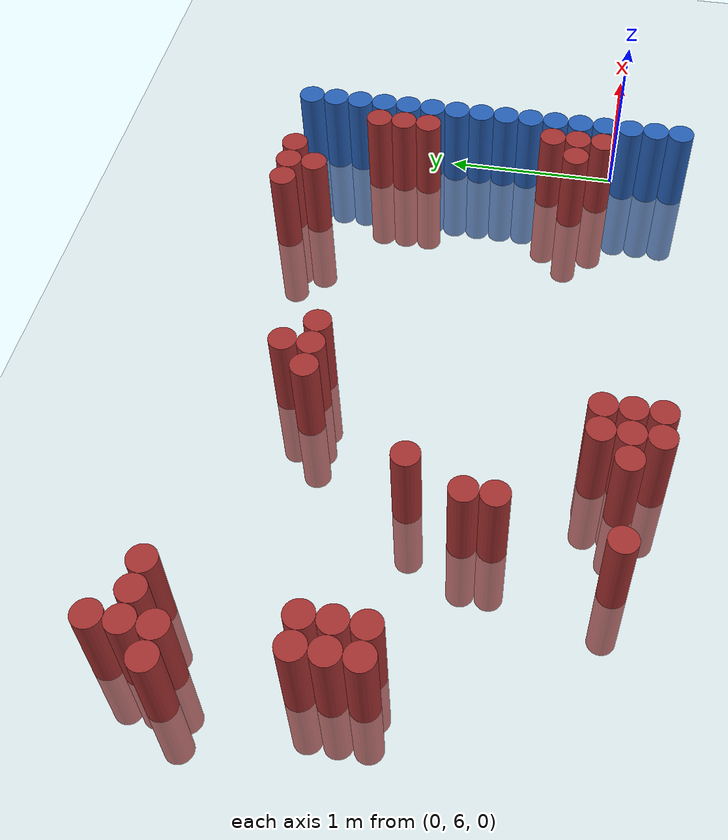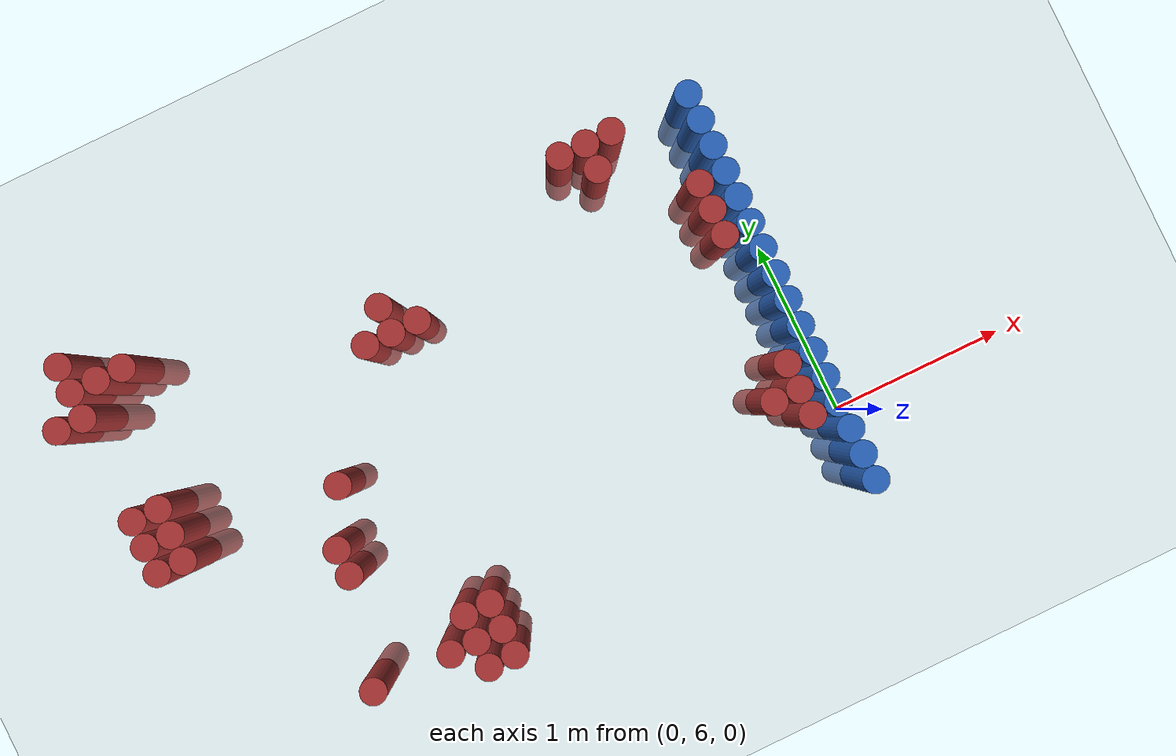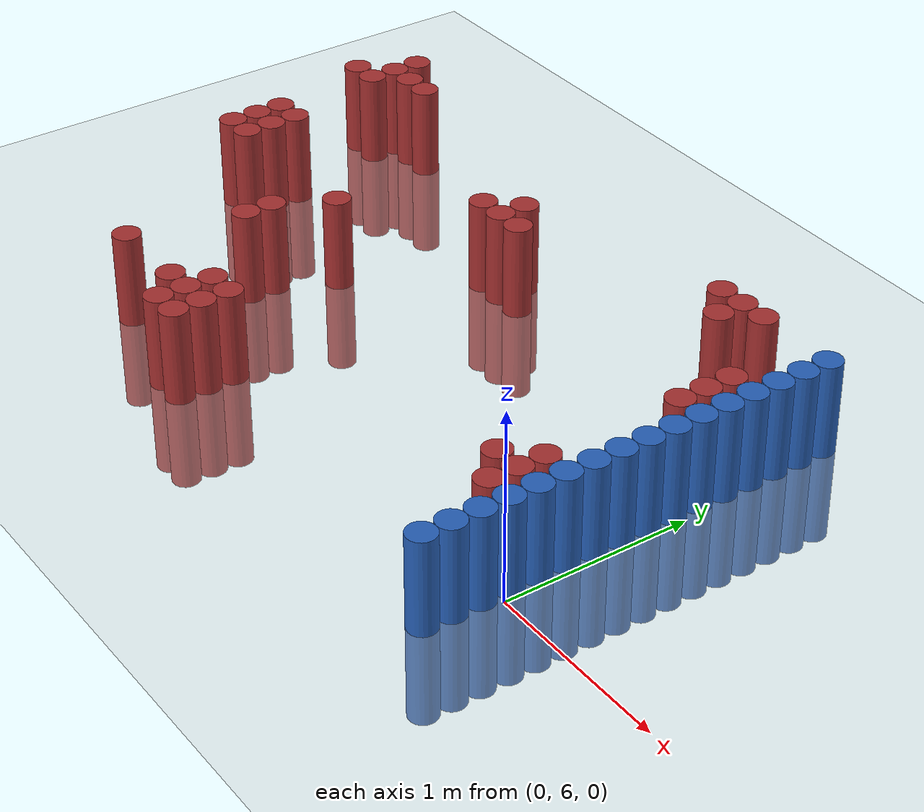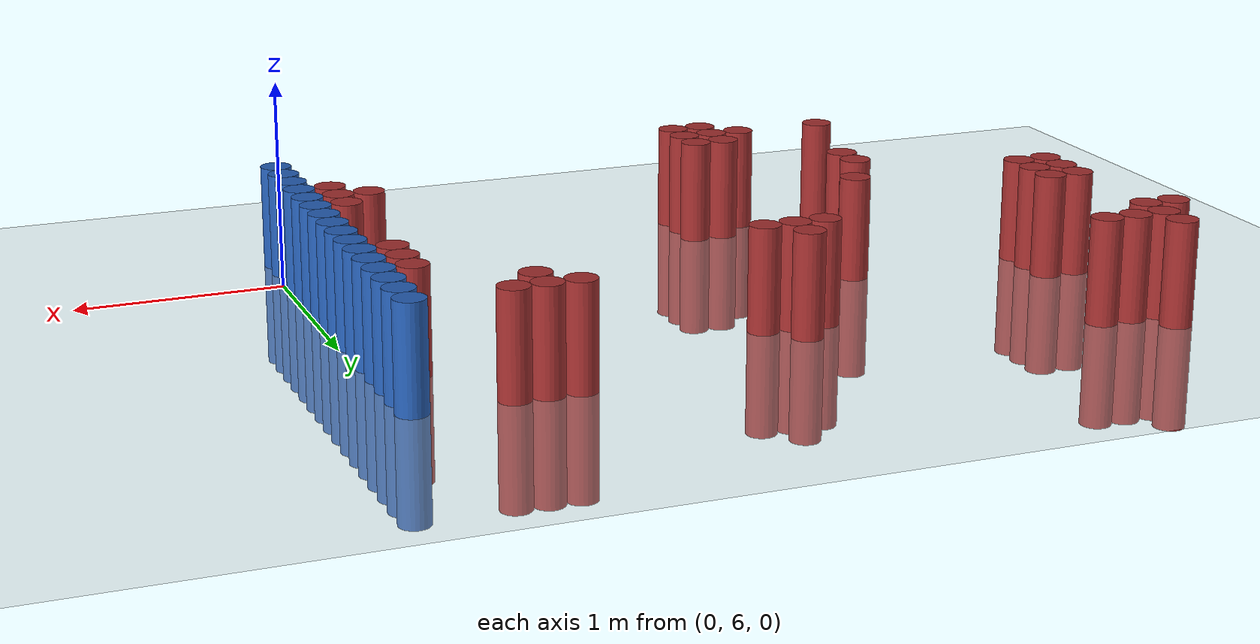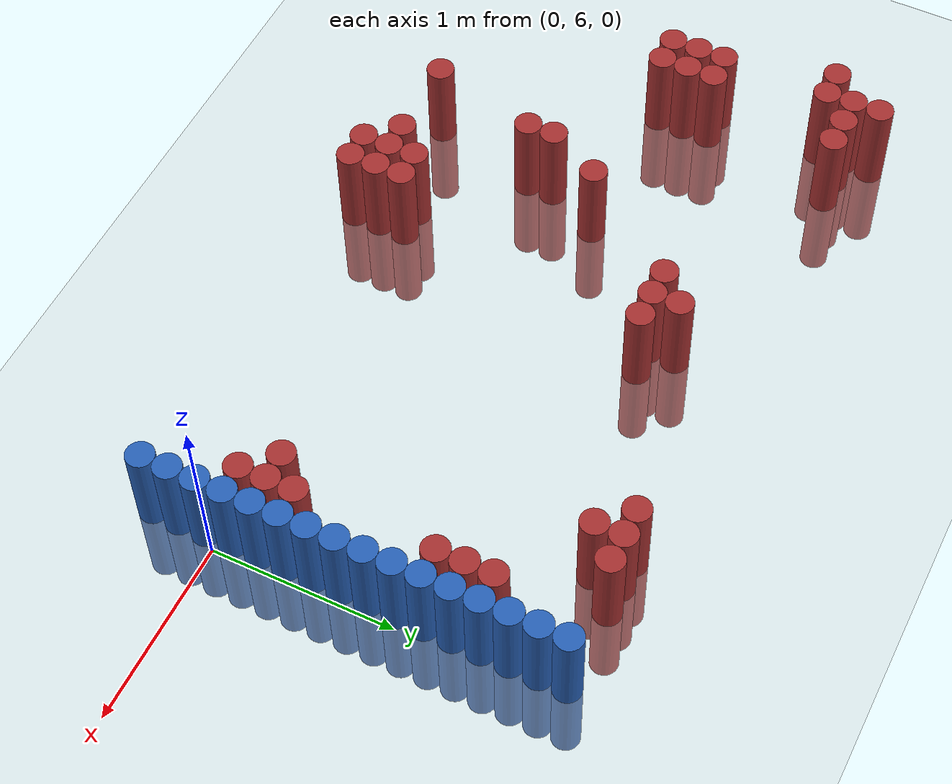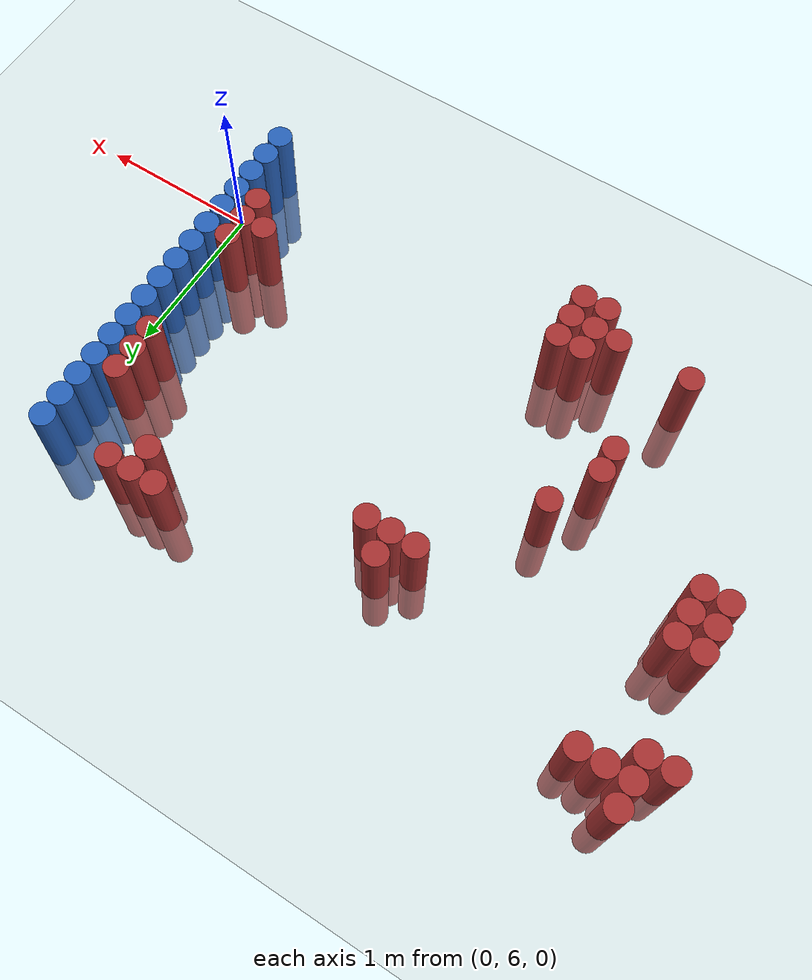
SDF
<sdf version="1.6">
 <world name="default">
  <model name="ground_plane">
   <static>1</static>
   <link name="link">
    <collision name="collision">
     <geometry><plane><normal>0 0 1</normal><size>100 100</size></plane></geometry>
     <surface><friction><ode><mu>100</mu><mu2>50</mu2></ode></friction></surface>
    </collision>
    <visual name="visual">
     <cast_shadows>0</cast_shadows>
     <geometry><plane><normal>0 0 1</normal><size>100 100</size></plane></geometry>
     <material>
      <script><uri>file://media/materials/scripts/gazebo.material</uri><name>Gazebo/Grey</name></script>
     </material>
    </visual>
   </link>
  </model>
  <model name="unit_cylinder_155">
   <static>1</static>
   <pose>-3.825000 7.725000 0.000000 0.000000 0.000000 0.000000</pose>
   <link name="link">
    <inertial>
     <mass>1</mass>
     <inertia><ixx>0.145833</ixx><ixy>0</ixy><ixz>0</ixz><iyy>0.145833</iyy><iyz>0</iyz><izz>0.125</izz></inertia>
    </inertial>
    <collision name="collision">
     <geometry><cylinder><radius>0.075000</radius><length>1</length></cylinder></geometry>
    </collision>
    <visual name="visual">
     <geometry><cylinder><radius>0.075000</radius><length>1</length></cylinder></geometry>
     <material>
      <ambient>0.648000 0.192000 0.192000 1</ambient>
      <diffuse>0.648000 0.192000 0.192000 1</diffuse>
     </material>
     <material>
      <script><name>Gazebo/Grey</name><uri>file://media/materials/scripts/gazebo.material</uri></script>
     </material>
    </visual>
   </link>
  </model>
  <model name="unit_cylinder_158">
   <static>1</static>
   <pose>-3.675000 6.825000 0.000000 0.000000 0.000000 0.000000</pose>
   <link name="link">
    <inertial>
     <mass>1</mass>
     <inertia><ixx>0.145833</ixx><ixy>0</ixy><ixz>0</ixz><iyy>0.145833</iyy><iyz>0</iyz><izz>0.125</izz></inertia>
    </inertial>
    <collision name="collision">
     <geometry><cylinder><radius>0.075000</radius><length>1</length></cylinder></geometry>
    </collision>
    <visual name="visual">
     <geometry><cylinder><radius>0.075000</radius><length>1</length></cylinder></geometry>
     <material>
      <ambient>0.648000 0.192000 0.192000 1</ambient>
      <diffuse>0.648000 0.192000 0.192000 1</diffuse>
     </material>
     <material>
      <script><name>Gazebo/Grey</name><uri>file://media/materials/scripts/gazebo.material</uri></script>
     </material>
    </visual>
   </link>
  </model>
  <model name="unit_cylinder_159">
   <static>1</static>
   <pose>-3.675000 6.975000 0.000000 0.000000 0.000000 0.000000</pose>
   <link name="link">
    <inertial>
     <mass>1</mass>
     <inertia><ixx>0.145833</ixx><ixy>0</ixy><ixz>0</ixz><iyy>0.145833</iyy><iyz>0</iyz><izz>0.125</izz></inertia>
    </inertial>
    <collision name="collision">
     <geometry><cylinder><radius>0.075000</radius><length>1</length></cylinder></geometry>
    </collision>
    <visual name="visual">
     <geometry><cylinder><radius>0.075000</radius><length>1</length></cylinder></geometry>
     <material>
      <ambient>0.648000 0.192000 0.192000 1</ambient>
      <diffuse>0.648000 0.192000 0.192000 1</diffuse>
     </material>
     <material>
      <script><name>Gazebo/Grey</name><uri>file://media/materials/scripts/gazebo.material</uri></script>
     </material>
    </visual>
   </link>
  </model>
  <model name="unit_cylinder_160">
   <static>1</static>
   <pose>-3.675000 7.125000 0.000000 0.000000 0.000000 0.000000</pose>
   <link name="link">
    <inertial>
     <mass>1</mass>
     <inertia><ixx>0.145833</ixx><ixy>0</ixy><ixz>0</ixz><iyy>0.145833</iyy><iyz>0</iyz><izz>0.125</izz></inertia>
    </inertial>
    <collision name="collision">
     <geometry><cylinder><radius>0.075000</radius><length>1</length></cylinder></geometry>
    </collision>
    <visual name="visual">
     <geometry><cylinder><radius>0.075000</radius><length>1</length></cylinder></geometry>
     <material>
      <ambient>0.648000 0.192000 0.192000 1</ambient>
      <diffuse>0.648000 0.192000 0.192000 1</diffuse>
     </material>
     <material>
      <script><name>Gazebo/Grey</name><uri>file://media/materials/scripts/gazebo.material</uri></script>
     </material>
    </visual>
   </link>
  </model>
  <model name="unit_cylinder_161">
   <static>1</static>
   <pose>-3.675000 7.725000 0.000000 0.000000 0.000000 0.000000</pose>
   <link name="link">
    <inertial>
     <mass>1</mass>
     <inertia><ixx>0.145833</ixx><ixy>0</ixy><ixz>0</ixz><iyy>0.145833</iyy><iyz>0</iyz><izz>0.125</izz></inertia>
    </inertial>
    <collision name="collision">
     <geometry><cylinder><radius>0.075000</radius><length>1</length></cylinder></geometry>
    </collision>
    <visual name="visual">
     <geometry><cylinder><radius>0.075000</radius><length>1</length></cylinder></geometry>
     <material>
      <ambient>0.648000 0.192000 0.192000 1</ambient>
      <diffuse>0.648000 0.192000 0.192000 1</diffuse>
     </material>
     <material>
      <script><name>Gazebo/Grey</name><uri>file://media/materials/scripts/gazebo.material</uri></script>
     </material>
    </visual>
   </link>
  </model>
  <model name="unit_cylinder_162">
   <static>1</static>
   <pose>-3.675000 7.875000 0.000000 0.000000 0.000000 0.000000</pose>
   <link name="link">
    <inertial>
     <mass>1</mass>
     <inertia><ixx>0.145833</ixx><ixy>0</ixy><ixz>0</ixz><iyy>0.145833</iyy><iyz>0</iyz><izz>0.125</izz></inertia>
    </inertial>
    <collision name="collision">
     <geometry><cylinder><radius>0.075000</radius><length>1</length></cylinder></geometry>
    </collision>
    <visual name="visual">
     <geometry><cylinder><radius>0.075000</radius><length>1</length></cylinder></geometry>
     <material>
      <ambient>0.648000 0.192000 0.192000 1</ambient>
      <diffuse>0.648000 0.192000 0.192000 1</diffuse>
     </material>
     <material>
      <script><name>Gazebo/Grey</name><uri>file://media/materials/scripts/gazebo.material</uri></script>
     </material>
    </visual>
   </link>
  </model>
  <model name="unit_cylinder_163">
   <static>1</static>
   <pose>-3.675000 8.025000 0.000000 0.000000 0.000000 0.000000</pose>
   <link name="link">
    <inertial>
     <mass>1</mass>
     <inertia><ixx>0.145833</ixx><ixy>0</ixy><ixz>0</ixz><iyy>0.145833</iyy><iyz>0</iyz><izz>0.125</izz></inertia>
    </inertial>
    <collision name="collision">
     <geometry><cylinder><radius>0.075000</radius><length>1</length></cylinder></geometry>
    </collision>
    <visual name="visual">
     <geometry><cylinder><radius>0.075000</radius><length>1</length></cylinder></geometry>
     <material>
      <ambient>0.648000 0.192000 0.192000 1</ambient>
      <diffuse>0.648000 0.192000 0.192000 1</diffuse>
     </material>
     <material>
      <script><name>Gazebo/Grey</name><uri>file://media/materials/scripts/gazebo.material</uri></script>
     </material>
    </visual>
   </link>
  </model>
  <model name="unit_cylinder_167">
   <static>1</static>
   <pose>-3.525000 6.825000 0.000000 0.000000 0.000000 0.000000</pose>
   <link name="link">
    <inertial>
     <mass>1</mass>
     <inertia><ixx>0.145833</ixx><ixy>0</ixy><ixz>0</ixz><iyy>0.145833</iyy><iyz>0</iyz><izz>0.125</izz></inertia>
    </inertial>
    <collision name="collision">
     <geometry><cylinder><radius>0.075000</radius><length>1</length></cylinder></geometry>
    </collision>
    <visual name="visual">
     <geometry><cylinder><radius>0.075000</radius><length>1</length></cylinder></geometry>
     <material>
      <ambient>0.648000 0.192000 0.192000 1</ambient>
      <diffuse>0.648000 0.192000 0.192000 1</diffuse>
     </material>
     <material>
      <script><name>Gazebo/Grey</name><uri>file://media/materials/scripts/gazebo.material</uri></script>
     </material>
    </visual>
   </link>
  </model>
  <model name="unit_cylinder_168">
   <static>1</static>
   <pose>-3.525000 6.975000 0.000000 0.000000 0.000000 0.000000</pose>
   <link name="link">
    <inertial>
     <mass>1</mass>
     <inertia><ixx>0.145833</ixx><ixy>0</ixy><ixz>0</ixz><iyy>0.145833</iyy><iyz>0</iyz><izz>0.125</izz></inertia>
    </inertial>
    <collision name="collision">
     <geometry><cylinder><radius>0.075000</radius><length>1</length></cylinder></geometry>
    </collision>
    <visual name="visual">
     <geometry><cylinder><radius>0.075000</radius><length>1</length></cylinder></geometry>
     <material>
      <ambient>0.648000 0.192000 0.192000 1</ambient>
      <diffuse>0.648000 0.192000 0.192000 1</diffuse>
     </material>
     <material>
      <script><name>Gazebo/Grey</name><uri>file://media/materials/scripts/gazebo.material</uri></script>
     </material>
    </visual>
   </link>
  </model>
  <model name="unit_cylinder_169">
   <static>1</static>
   <pose>-3.525000 7.125000 0.000000 0.000000 0.000000 0.000000</pose>
   <link name="link">
    <inertial>
     <mass>1</mass>
     <inertia><ixx>0.145833</ixx><ixy>0</ixy><ixz>0</ixz><iyy>0.145833</iyy><iyz>0</iyz><izz>0.125</izz></inertia>
    </inertial>
    <collision name="collision">
     <geometry><cylinder><radius>0.075000</radius><length>1</length></cylinder></geometry>
    </collision>
    <visual name="visual">
     <geometry><cylinder><radius>0.075000</radius><length>1</length></cylinder></geometry>
     <material>
      <ambient>0.648000 0.192000 0.192000 1</ambient>
      <diffuse>0.648000 0.192000 0.192000 1</diffuse>
     </material>
     <material>
      <script><name>Gazebo/Grey</name><uri>file://media/materials/scripts/gazebo.material</uri></script>
     </material>
    </visual>
   </link>
  </model>
  <model name="unit_cylinder_170">
   <static>1</static>
   <pose>-3.525000 7.875000 0.000000 0.000000 0.000000 0.000000</pose>
   <link name="link">
    <inertial>
     <mass>1</mass>
     <inertia><ixx>0.145833</ixx><ixy>0</ixy><ixz>0</ixz><iyy>0.145833</iyy><iyz>0</iyz><izz>0.125</izz></inertia>
    </inertial>
    <collision name="collision">
     <geometry><cylinder><radius>0.075000</radius><length>1</length></cylinder></geometry>
    </collision>
    <visual name="visual">
     <geometry><cylinder><radius>0.075000</radius><length>1</length></cylinder></geometry>
     <material>
      <ambient>0.648000 0.192000 0.192000 1</ambient>
      <diffuse>0.648000 0.192000 0.192000 1</diffuse>
     </material>
     <material>
      <script><name>Gazebo/Grey</name><uri>file://media/materials/scripts/gazebo.material</uri></script>
     </material>
    </visual>
   </link>
  </model>
  <model name="unit_cylinder_173">
   <static>1</static>
   <pose>-3.375000 7.875000 0.000000 0.000000 0.000000 0.000000</pose>
   <link name="link">
    <inertial>
     <mass>1</mass>
     <inertia><ixx>0.145833</ixx><ixy>0</ixy><ixz>0</ixz><iyy>0.145833</iyy><iyz>0</iyz><izz>0.125</izz></inertia>
    </inertial>
    <collision name="collision">
     <geometry><cylinder><radius>0.075000</radius><length>1</length></cylinder></geometry>
    </collision>
    <visual name="visual">
     <geometry><cylinder><radius>0.075000</radius><length>1</length></cylinder></geometry>
     <material>
      <ambient>0.648000 0.192000 0.192000 1</ambient>
      <diffuse>0.648000 0.192000 0.192000 1</diffuse>
     </material>
     <material>
      <script><name>Gazebo/Grey</name><uri>file://media/materials/scripts/gazebo.material</uri></script>
     </material>
    </visual>
   </link>
  </model>
  <model name="unit_cylinder_181">
   <static>1</static>
   <pose>-2.925000 5.775000 0.000000 0.000000 0.000000 0.000000</pose>
   <link name="link">
    <inertial>
     <mass>1</mass>
     <inertia><ixx>0.145833</ixx><ixy>0</ixy><ixz>0</ixz><iyy>0.145833</iyy><iyz>0</iyz><izz>0.125</izz></inertia>
    </inertial>
    <collision name="collision">
     <geometry><cylinder><radius>0.075000</radius><length>1</length></cylinder></geometry>
    </collision>
    <visual name="visual">
     <geometry><cylinder><radius>0.075000</radius><length>1</length></cylinder></geometry>
     <material>
      <ambient>0.648000 0.192000 0.192000 1</ambient>
      <diffuse>0.648000 0.192000 0.192000 1</diffuse>
     </material>
     <material>
      <script><name>Gazebo/Grey</name><uri>file://media/materials/scripts/gazebo.material</uri></script>
     </material>
    </visual>
   </link>
  </model>
  <model name="unit_cylinder_187">
   <static>1</static>
   <pose>-2.775000 6.375000 0.000000 0.000000 0.000000 0.000000</pose>
   <link name="link">
    <inertial>
     <mass>1</mass>
     <inertia><ixx>0.145833</ixx><ixy>0</ixy><ixz>0</ixz><iyy>0.145833</iyy><iyz>0</iyz><izz>0.125</izz></inertia>
    </inertial>
    <collision name="collision">
     <geometry><cylinder><radius>0.075000</radius><length>1</length></cylinder></geometry>
    </collision>
    <visual name="visual">
     <geometry><cylinder><radius>0.075000</radius><length>1</length></cylinder></geometry>
     <material>
      <ambient>0.648000 0.192000 0.192000 1</ambient>
      <diffuse>0.648000 0.192000 0.192000 1</diffuse>
     </material>
     <material>
      <script><name>Gazebo/Grey</name><uri>file://media/materials/scripts/gazebo.material</uri></script>
     </material>
    </visual>
   </link>
  </model>
  <model name="unit_cylinder_188">
   <static>1</static>
   <pose>-2.775000 6.525000 0.000000 0.000000 0.000000 0.000000</pose>
   <link name="link">
    <inertial>
     <mass>1</mass>
     <inertia><ixx>0.145833</ixx><ixy>0</ixy><ixz>0</ixz><iyy>0.145833</iyy><iyz>0</iyz><izz>0.125</izz></inertia>
    </inertial>
    <collision name="collision">
     <geometry><cylinder><radius>0.075000</radius><length>1</length></cylinder></geometry>
    </collision>
    <visual name="visual">
     <geometry><cylinder><radius>0.075000</radius><length>1</length></cylinder></geometry>
     <material>
      <ambient>0.648000 0.192000 0.192000 1</ambient>
      <diffuse>0.648000 0.192000 0.192000 1</diffuse>
     </material>
     <material>
      <script><name>Gazebo/Grey</name><uri>file://media/materials/scripts/gazebo.material</uri></script>
     </material>
    </visual>
   </link>
  </model>
  <model name="unit_cylinder_191">
   <static>1</static>
   <pose>-2.625000 6.825000 0.000000 0.000000 0.000000 0.000000</pose>
   <link name="link">
    <inertial>
     <mass>1</mass>
     <inertia><ixx>0.145833</ixx><ixy>0</ixy><ixz>0</ixz><iyy>0.145833</iyy><iyz>0</iyz><izz>0.125</izz></inertia>
    </inertial>
    <collision name="collision">
     <geometry><cylinder><radius>0.075000</radius><length>1</length></cylinder></geometry>
    </collision>
    <visual name="visual">
     <geometry><cylinder><radius>0.075000</radius><length>1</length></cylinder></geometry>
     <material>
      <ambient>0.648000 0.192000 0.192000 1</ambient>
      <diffuse>0.648000 0.192000 0.192000 1</diffuse>
     </material>
     <material>
      <script><name>Gazebo/Grey</name><uri>file://media/materials/scripts/gazebo.material</uri></script>
     </material>
    </visual>
   </link>
  </model>
  <model name="unit_cylinder_197">
   <static>1</static>
   <pose>-2.475000 5.775000 0.000000 0.000000 0.000000 0.000000</pose>
   <link name="link">
    <inertial>
     <mass>1</mass>
     <inertia><ixx>0.145833</ixx><ixy>0</ixy><ixz>0</ixz><iyy>0.145833</iyy><iyz>0</iyz><izz>0.125</izz></inertia>
    </inertial>
    <collision name="collision">
     <geometry><cylinder><radius>0.075000</radius><length>1</length></cylinder></geometry>
    </collision>
    <visual name="visual">
     <geometry><cylinder><radius>0.075000</radius><length>1</length></cylinder></geometry>
     <material>
      <ambient>0.648000 0.192000 0.192000 1</ambient>
      <diffuse>0.648000 0.192000 0.192000 1</diffuse>
     </material>
     <material>
      <script><name>Gazebo/Grey</name><uri>file://media/materials/scripts/gazebo.material</uri></script>
     </material>
    </visual>
   </link>
  </model>
  <model name="unit_cylinder_202">
   <static>1</static>
   <pose>-2.325000 5.625000 0.000000 0.000000 0.000000 0.000000</pose>
   <link name="link">
    <inertial>
     <mass>1</mass>
     <inertia><ixx>0.145833</ixx><ixy>0</ixy><ixz>0</ixz><iyy>0.145833</iyy><iyz>0</iyz><izz>0.125</izz></inertia>
    </inertial>
    <collision name="collision">
     <geometry><cylinder><radius>0.075000</radius><length>1</length></cylinder></geometry>
    </collision>
    <visual name="visual">
     <geometry><cylinder><radius>0.075000</radius><length>1</length></cylinder></geometry>
     <material>
      <ambient>0.648000 0.192000 0.192000 1</ambient>
      <diffuse>0.648000 0.192000 0.192000 1</diffuse>
     </material>
     <material>
      <script><name>Gazebo/Grey</name><uri>file://media/materials/scripts/gazebo.material</uri></script>
     </material>
    </visual>
   </link>
  </model>
  <model name="unit_cylinder_203">
   <static>1</static>
   <pose>-2.325000 5.775000 0.000000 0.000000 0.000000 0.000000</pose>
   <link name="link">
    <inertial>
     <mass>1</mass>
     <inertia><ixx>0.145833</ixx><ixy>0</ixy><ixz>0</ixz><iyy>0.145833</iyy><iyz>0</iyz><izz>0.125</izz></inertia>
    </inertial>
    <collision name="collision">
     <geometry><cylinder><radius>0.075000</radius><length>1</length></cylinder></geometry>
    </collision>
    <visual name="visual">
     <geometry><cylinder><radius>0.075000</radius><length>1</length></cylinder></geometry>
     <material>
      <ambient>0.648000 0.192000 0.192000 1</ambient>
      <diffuse>0.648000 0.192000 0.192000 1</diffuse>
     </material>
     <material>
      <script><name>Gazebo/Grey</name><uri>file://media/materials/scripts/gazebo.material</uri></script>
     </material>
    </visual>
   </link>
  </model>
  <model name="unit_cylinder_204">
   <static>1</static>
   <pose>-2.325000 5.925000 0.000000 0.000000 0.000000 0.000000</pose>
   <link name="link">
    <inertial>
     <mass>1</mass>
     <inertia><ixx>0.145833</ixx><ixy>0</ixy><ixz>0</ixz><iyy>0.145833</iyy><iyz>0</iyz><izz>0.125</izz></inertia>
    </inertial>
    <collision name="collision">
     <geometry><cylinder><radius>0.075000</radius><length>1</length></cylinder></geometry>
    </collision>
    <visual name="visual">
     <geometry><cylinder><radius>0.075000</radius><length>1</length></cylinder></geometry>
     <material>
      <ambient>0.648000 0.192000 0.192000 1</ambient>
      <diffuse>0.648000 0.192000 0.192000 1</diffuse>
     </material>
     <material>
      <script><name>Gazebo/Grey</name><uri>file://media/materials/scripts/gazebo.material</uri></script>
     </material>
    </visual>
   </link>
  </model>
  <model name="unit_cylinder_208">
   <static>1</static>
   <pose>-2.175000 5.625000 0.000000 0.000000 0.000000 0.000000</pose>
   <link name="link">
    <inertial>
     <mass>1</mass>
     <inertia><ixx>0.145833</ixx><ixy>0</ixy><ixz>0</ixz><iyy>0.145833</iyy><iyz>0</iyz><izz>0.125</izz></inertia>
    </inertial>
    <collision name="collision">
     <geometry><cylinder><radius>0.075000</radius><length>1</length></cylinder></geometry>
    </collision>
    <visual name="visual">
     <geometry><cylinder><radius>0.075000</radius><length>1</length></cylinder></geometry>
     <material>
      <ambient>0.648000 0.192000 0.192000 1</ambient>
      <diffuse>0.648000 0.192000 0.192000 1</diffuse>
     </material>
     <material>
      <script><name>Gazebo/Grey</name><uri>file://media/materials/scripts/gazebo.material</uri></script>
     </material>
    </visual>
   </link>
  </model>
  <model name="unit_cylinder_209">
   <static>1</static>
   <pose>-2.175000 5.775000 0.000000 0.000000 0.000000 0.000000</pose>
   <link name="link">
    <inertial>
     <mass>1</mass>
     <inertia><ixx>0.145833</ixx><ixy>0</ixy><ixz>0</ixz><iyy>0.145833</iyy><iyz>0</iyz><izz>0.125</izz></inertia>
    </inertial>
    <collision name="collision">
     <geometry><cylinder><radius>0.075000</radius><length>1</length></cylinder></geometry>
    </collision>
    <visual name="visual">
     <geometry><cylinder><radius>0.075000</radius><length>1</length></cylinder></geometry>
     <material>
      <ambient>0.648000 0.192000 0.192000 1</ambient>
      <diffuse>0.648000 0.192000 0.192000 1</diffuse>
     </material>
     <material>
      <script><name>Gazebo/Grey</name><uri>file://media/materials/scripts/gazebo.material</uri></script>
     </material>
    </visual>
   </link>
  </model>
  <model name="unit_cylinder_210">
   <static>1</static>
   <pose>-2.175000 5.925000 0.000000 0.000000 0.000000 0.000000</pose>
   <link name="link">
    <inertial>
     <mass>1</mass>
     <inertia><ixx>0.145833</ixx><ixy>0</ixy><ixz>0</ixz><iyy>0.145833</iyy><iyz>0</iyz><izz>0.125</izz></inertia>
    </inertial>
    <collision name="collision">
     <geometry><cylinder><radius>0.075000</radius><length>1</length></cylinder></geometry>
    </collision>
    <visual name="visual">
     <geometry><cylinder><radius>0.075000</radius><length>1</length></cylinder></geometry>
     <material>
      <ambient>0.648000 0.192000 0.192000 1</ambient>
      <diffuse>0.648000 0.192000 0.192000 1</diffuse>
     </material>
     <material>
      <script><name>Gazebo/Grey</name><uri>file://media/materials/scripts/gazebo.material</uri></script>
     </material>
    </visual>
   </link>
  </model>
  <model name="unit_cylinder_211">
   <static>1</static>
   <pose>-2.175000 7.425000 0.000000 0.000000 0.000000 0.000000</pose>
   <link name="link">
    <inertial>
     <mass>1</mass>
     <inertia><ixx>0.145833</ixx><ixy>0</ixy><ixz>0</ixz><iyy>0.145833</iyy><iyz>0</iyz><izz>0.125</izz></inertia>
    </inertial>
    <collision name="collision">
     <geometry><cylinder><radius>0.075000</radius><length>1</length></cylinder></geometry>
    </collision>
    <visual name="visual">
     <geometry><cylinder><radius>0.075000</radius><length>1</length></cylinder></geometry>
     <material>
      <ambient>0.648000 0.192000 0.192000 1</ambient>
      <diffuse>0.648000 0.192000 0.192000 1</diffuse>
     </material>
     <material>
      <script><name>Gazebo/Grey</name><uri>file://media/materials/scripts/gazebo.material</uri></script>
     </material>
    </visual>
   </link>
  </model>
  <model name="unit_cylinder_213">
   <static>1</static>
   <pose>-2.025000 7.425000 0.000000 0.000000 0.000000 0.000000</pose>
   <link name="link">
    <inertial>
     <mass>1</mass>
     <inertia><ixx>0.145833</ixx><ixy>0</ixy><ixz>0</ixz><iyy>0.145833</iyy><iyz>0</iyz><izz>0.125</izz></inertia>
    </inertial>
    <collision name="collision">
     <geometry><cylinder><radius>0.075000</radius><length>1</length></cylinder></geometry>
    </collision>
    <visual name="visual">
     <geometry><cylinder><radius>0.075000</radius><length>1</length></cylinder></geometry>
     <material>
      <ambient>0.648000 0.192000 0.192000 1</ambient>
      <diffuse>0.648000 0.192000 0.192000 1</diffuse>
     </material>
     <material>
      <script><name>Gazebo/Grey</name><uri>file://media/materials/scripts/gazebo.material</uri></script>
     </material>
    </visual>
   </link>
  </model>
  <model name="unit_cylinder_214">
   <static>1</static>
   <pose>-2.025000 7.575000 0.000000 0.000000 0.000000 0.000000</pose>
   <link name="link">
    <inertial>
     <mass>1</mass>
     <inertia><ixx>0.145833</ixx><ixy>0</ixy><ixz>0</ixz><iyy>0.145833</iyy><iyz>0</iyz><izz>0.125</izz></inertia>
    </inertial>
    <collision name="collision">
     <geometry><cylinder><radius>0.075000</radius><length>1</length></cylinder></geometry>
    </collision>
    <visual name="visual">
     <geometry><cylinder><radius>0.075000</radius><length>1</length></cylinder></geometry>
     <material>
      <ambient>0.648000 0.192000 0.192000 1</ambient>
      <diffuse>0.648000 0.192000 0.192000 1</diffuse>
     </material>
     <material>
      <script><name>Gazebo/Grey</name><uri>file://media/materials/scripts/gazebo.material</uri></script>
     </material>
    </visual>
   </link>
  </model>
  <model name="unit_cylinder_215">
   <static>1</static>
   <pose>-1.875000 7.425000 0.000000 0.000000 0.000000 0.000000</pose>
   <link name="link">
    <inertial>
     <mass>1</mass>
     <inertia><ixx>0.145833</ixx><ixy>0</ixy><ixz>0</ixz><iyy>0.145833</iyy><iyz>0</iyz><izz>0.125</izz></inertia>
    </inertial>
    <collision name="collision">
     <geometry><cylinder><radius>0.075000</radius><length>1</length></cylinder></geometry>
    </collision>
    <visual name="visual">
     <geometry><cylinder><radius>0.075000</radius><length>1</length></cylinder></geometry>
     <material>
      <ambient>0.648000 0.192000 0.192000 1</ambient>
      <diffuse>0.648000 0.192000 0.192000 1</diffuse>
     </material>
     <material>
      <script><name>Gazebo/Grey</name><uri>file://media/materials/scripts/gazebo.material</uri></script>
     </material>
    </visual>
   </link>
  </model>
  <model name="unit_cylinder_219">
   <static>1</static>
   <pose>-0.825000 7.875000 0.000000 0.000000 0.000000 0.000000</pose>
   <link name="link">
    <inertial>
     <mass>1</mass>
     <inertia><ixx>0.145833</ixx><ixy>0</ixy><ixz>0</ixz><iyy>0.145833</iyy><iyz>0</iyz><izz>0.125</izz></inertia>
    </inertial>
    <collision name="collision">
     <geometry><cylinder><radius>0.075000</radius><length>1</length></cylinder></geometry>
    </collision>
    <visual name="visual">
     <geometry><cylinder><radius>0.075000</radius><length>1</length></cylinder></geometry>
     <material>
      <ambient>0.648000 0.192000 0.192000 1</ambient>
      <diffuse>0.648000 0.192000 0.192000 1</diffuse>
     </material>
     <material>
      <script><name>Gazebo/Grey</name><uri>file://media/materials/scripts/gazebo.material</uri></script>
     </material>
    </visual>
   </link>
  </model>
  <model name="unit_cylinder_223">
   <static>1</static>
   <pose>-0.675000 7.725000 0.000000 0.000000 0.000000 0.000000</pose>
   <link name="link">
    <inertial>
     <mass>1</mass>
     <inertia><ixx>0.145833</ixx><ixy>0</ixy><ixz>0</ixz><iyy>0.145833</iyy><iyz>0</iyz><izz>0.125</izz></inertia>
    </inertial>
    <collision name="collision">
     <geometry><cylinder><radius>0.075000</radius><length>1</length></cylinder></geometry>
    </collision>
    <visual name="visual">
     <geometry><cylinder><radius>0.075000</radius><length>1</length></cylinder></geometry>
     <material>
      <ambient>0.648000 0.192000 0.192000 1</ambient>
      <diffuse>0.648000 0.192000 0.192000 1</diffuse>
     </material>
     <material>
      <script><name>Gazebo/Grey</name><uri>file://media/materials/scripts/gazebo.material</uri></script>
     </material>
    </visual>
   </link>
  </model>
  <model name="unit_cylinder_224">
   <static>1</static>
   <pose>-0.675000 7.875000 0.000000 0.000000 0.000000 0.000000</pose>
   <link name="link">
    <inertial>
     <mass>1</mass>
     <inertia><ixx>0.145833</ixx><ixy>0</ixy><ixz>0</ixz><iyy>0.145833</iyy><iyz>0</iyz><izz>0.125</izz></inertia>
    </inertial>
    <collision name="collision">
     <geometry><cylinder><radius>0.075000</radius><length>1</length></cylinder></geometry>
    </collision>
    <visual name="visual">
     <geometry><cylinder><radius>0.075000</radius><length>1</length></cylinder></geometry>
     <material>
      <ambient>0.648000 0.192000 0.192000 1</ambient>
      <diffuse>0.648000 0.192000 0.192000 1</diffuse>
     </material>
     <material>
      <script><name>Gazebo/Grey</name><uri>file://media/materials/scripts/gazebo.material</uri></script>
     </material>
    </visual>
   </link>
  </model>
  <model name="unit_cylinder_229">
   <static>1</static>
   <pose>-0.525000 7.875000 0.000000 0.000000 0.000000 0.000000</pose>
   <link name="link">
    <inertial>
     <mass>1</mass>
     <inertia><ixx>0.145833</ixx><ixy>0</ixy><ixz>0</ixz><iyy>0.145833</iyy><iyz>0</iyz><izz>0.125</izz></inertia>
    </inertial>
    <collision name="collision">
     <geometry><cylinder><radius>0.075000</radius><length>1</length></cylinder></geometry>
    </collision>
    <visual name="visual">
     <geometry><cylinder><radius>0.075000</radius><length>1</length></cylinder></geometry>
     <material>
      <ambient>0.648000 0.192000 0.192000 1</ambient>
      <diffuse>0.648000 0.192000 0.192000 1</diffuse>
     </material>
     <material>
      <script><name>Gazebo/Grey</name><uri>file://media/materials/scripts/gazebo.material</uri></script>
     </material>
    </visual>
   </link>
  </model>
  <model name="unit_cylinder_231">
   <static>1</static>
   <pose>-0.375000 6.225000 0.000000 0.000000 0.000000 0.000000</pose>
   <link name="link">
    <inertial>
     <mass>1</mass>
     <inertia><ixx>0.145833</ixx><ixy>0</ixy><ixz>0</ixz><iyy>0.145833</iyy><iyz>0</iyz><izz>0.125</izz></inertia>
    </inertial>
    <collision name="collision">
     <geometry><cylinder><radius>0.075000</radius><length>1</length></cylinder></geometry>
    </collision>
    <visual name="visual">
     <geometry><cylinder><radius>0.075000</radius><length>1</length></cylinder></geometry>
     <material>
      <ambient>0.648000 0.192000 0.192000 1</ambient>
      <diffuse>0.648000 0.192000 0.192000 1</diffuse>
     </material>
     <material>
      <script><name>Gazebo/Grey</name><uri>file://media/materials/scripts/gazebo.material</uri></script>
     </material>
    </visual>
   </link>
  </model>
  <model name="unit_cylinder_232">
   <static>1</static>
   <pose>-0.225000 6.075000 0.000000 0.000000 0.000000 0.000000</pose>
   <link name="link">
    <inertial>
     <mass>1</mass>
     <inertia><ixx>0.145833</ixx><ixy>0</ixy><ixz>0</ixz><iyy>0.145833</iyy><iyz>0</iyz><izz>0.125</izz></inertia>
    </inertial>
    <collision name="collision">
     <geometry><cylinder><radius>0.075000</radius><length>1</length></cylinder></geometry>
    </collision>
    <visual name="visual">
     <geometry><cylinder><radius>0.075000</radius><length>1</length></cylinder></geometry>
     <material>
      <ambient>0.648000 0.192000 0.192000 1</ambient>
      <diffuse>0.648000 0.192000 0.192000 1</diffuse>
     </material>
     <material>
      <script><name>Gazebo/Grey</name><uri>file://media/materials/scripts/gazebo.material</uri></script>
     </material>
    </visual>
   </link>
  </model>
  <model name="unit_cylinder_233">
   <static>1</static>
   <pose>-0.225000 6.225000 0.000000 0.000000 0.000000 0.000000</pose>
   <link name="link">
    <inertial>
     <mass>1</mass>
     <inertia><ixx>0.145833</ixx><ixy>0</ixy><ixz>0</ixz><iyy>0.145833</iyy><iyz>0</iyz><izz>0.125</izz></inertia>
    </inertial>
    <collision name="collision">
     <geometry><cylinder><radius>0.075000</radius><length>1</length></cylinder></geometry>
    </collision>
    <visual name="visual">
     <geometry><cylinder><radius>0.075000</radius><length>1</length></cylinder></geometry>
     <material>
      <ambient>0.648000 0.192000 0.192000 1</ambient>
      <diffuse>0.648000 0.192000 0.192000 1</diffuse>
     </material>
     <material>
      <script><name>Gazebo/Grey</name><uri>file://media/materials/scripts/gazebo.material</uri></script>
     </material>
    </visual>
   </link>
  </model>
  <model name="unit_cylinder_234">
   <static>1</static>
   <pose>-0.225000 6.375000 0.000000 0.000000 0.000000 0.000000</pose>
   <link name="link">
    <inertial>
     <mass>1</mass>
     <inertia><ixx>0.145833</ixx><ixy>0</ixy><ixz>0</ixz><iyy>0.145833</iyy><iyz>0</iyz><izz>0.125</izz></inertia>
    </inertial>
    <collision name="collision">
     <geometry><cylinder><radius>0.075000</radius><length>1</length></cylinder></geometry>
    </collision>
    <visual name="visual">
     <geometry><cylinder><radius>0.075000</radius><length>1</length></cylinder></geometry>
     <material>
      <ambient>0.648000 0.192000 0.192000 1</ambient>
      <diffuse>0.648000 0.192000 0.192000 1</diffuse>
     </material>
     <material>
      <script><name>Gazebo/Grey</name><uri>file://media/materials/scripts/gazebo.material</uri></script>
     </material>
    </visual>
   </link>
  </model>
  <model name="unit_cylinder_235">
   <static>1</static>
   <pose>-0.225000 7.125000 0.000000 0.000000 0.000000 0.000000</pose>
   <link name="link">
    <inertial>
     <mass>1</mass>
     <inertia><ixx>0.145833</ixx><ixy>0</ixy><ixz>0</ixz><iyy>0.145833</iyy><iyz>0</iyz><izz>0.125</izz></inertia>
    </inertial>
    <collision name="collision">
     <geometry><cylinder><radius>0.075000</radius><length>1</length></cylinder></geometry>
    </collision>
    <visual name="visual">
     <geometry><cylinder><radius>0.075000</radius><length>1</length></cylinder></geometry>
     <material>
      <ambient>0.648000 0.192000 0.192000 1</ambient>
      <diffuse>0.648000 0.192000 0.192000 1</diffuse>
     </material>
     <material>
      <script><name>Gazebo/Grey</name><uri>file://media/materials/scripts/gazebo.material</uri></script>
     </material>
    </visual>
   </link>
  </model>
  <model name="unit_cylinder_236">
   <static>1</static>
   <pose>-0.225000 7.275000 0.000000 0.000000 0.000000 0.000000</pose>
   <link name="link">
    <inertial>
     <mass>1</mass>
     <inertia><ixx>0.145833</ixx><ixy>0</ixy><ixz>0</ixz><iyy>0.145833</iyy><iyz>0</iyz><izz>0.125</izz></inertia>
    </inertial>
    <collision name="collision">
     <geometry><cylinder><radius>0.075000</radius><length>1</length></cylinder></geometry>
    </collision>
    <visual name="visual">
     <geometry><cylinder><radius>0.075000</radius><length>1</length></cylinder></geometry>
     <material>
      <ambient>0.648000 0.192000 0.192000 1</ambient>
      <diffuse>0.648000 0.192000 0.192000 1</diffuse>
     </material>
     <material>
      <script><name>Gazebo/Grey</name><uri>file://media/materials/scripts/gazebo.material</uri></script>
     </material>
    </visual>
   </link>
  </model>
  <model name="unit_cylinder_237">
   <static>1</static>
   <pose>-0.225000 7.425000 0.000000 0.000000 0.000000 0.000000</pose>
   <link name="link">
    <inertial>
     <mass>1</mass>
     <inertia><ixx>0.145833</ixx><ixy>0</ixy><ixz>0</ixz><iyy>0.145833</iyy><iyz>0</iyz><izz>0.125</izz></inertia>
    </inertial>
    <collision name="collision">
     <geometry><cylinder><radius>0.075000</radius><length>1</length></cylinder></geometry>
    </collision>
    <visual name="visual">
     <geometry><cylinder><radius>0.075000</radius><length>1</length></cylinder></geometry>
     <material>
      <ambient>0.648000 0.192000 0.192000 1</ambient>
      <diffuse>0.648000 0.192000 0.192000 1</diffuse>
     </material>
     <material>
      <script><name>Gazebo/Grey</name><uri>file://media/materials/scripts/gazebo.material</uri></script>
     </material>
    </visual>
   </link>
  </model>
  <model name="unit_cylinder_245">
   <static>1</static>
   <pose>-0.075000 5.625000 0.000000 0.000000 0.000000 0.000000</pose>
   <link name="link">
    <inertial>
     <mass>1</mass>
     <inertia><ixx>0.145833</ixx><ixy>0</ixy><ixz>0</ixz><iyy>0.145833</iyy><iyz>0</iyz><izz>0.125</izz></inertia>
    </inertial>
    <collision name="collision">
     <geometry><cylinder><radius>0.075000</radius><length>1</length></cylinder></geometry>
    </collision>
    <visual name="visual">
     <geometry><cylinder><radius>0.075000</radius><length>1</length></cylinder></geometry>
     <material>
      <ambient>0.152000 0.379000 0.720000 1</ambient>
      <diffuse>0.152000 0.379000 0.720000 1</diffuse>
     </material>
     <material>
      <script><name>Gazebo/Grey</name><uri>file://media/materials/scripts/gazebo.material</uri></script>
     </material>
    </visual>
   </link>
  </model>
  <model name="unit_cylinder_246">
   <static>1</static>
   <pose>-0.075000 5.775000 0.000000 0.000000 0.000000 0.000000</pose>
   <link name="link">
    <inertial>
     <mass>1</mass>
     <inertia><ixx>0.145833</ixx><ixy>0</ixy><ixz>0</ixz><iyy>0.145833</iyy><iyz>0</iyz><izz>0.125</izz></inertia>
    </inertial>
    <collision name="collision">
     <geometry><cylinder><radius>0.075000</radius><length>1</length></cylinder></geometry>
    </collision>
    <visual name="visual">
     <geometry><cylinder><radius>0.075000</radius><length>1</length></cylinder></geometry>
     <material>
      <ambient>0.152000 0.379000 0.720000 1</ambient>
      <diffuse>0.152000 0.379000 0.720000 1</diffuse>
     </material>
     <material>
      <script><name>Gazebo/Grey</name><uri>file://media/materials/scripts/gazebo.material</uri></script>
     </material>
    </visual>
   </link>
  </model>
  <model name="unit_cylinder_247">
   <static>1</static>
   <pose>-0.075000 5.925000 0.000000 0.000000 0.000000 0.000000</pose>
   <link name="link">
    <inertial>
     <mass>1</mass>
     <inertia><ixx>0.145833</ixx><ixy>0</ixy><ixz>0</ixz><iyy>0.145833</iyy><iyz>0</iyz><izz>0.125</izz></inertia>
    </inertial>
    <collision name="collision">
     <geometry><cylinder><radius>0.075000</radius><length>1</length></cylinder></geometry>
    </collision>
    <visual name="visual">
     <geometry><cylinder><radius>0.075000</radius><length>1</length></cylinder></geometry>
     <material>
      <ambient>0.152000 0.379000 0.720000 1</ambient>
      <diffuse>0.152000 0.379000 0.720000 1</diffuse>
     </material>
     <material>
      <script><name>Gazebo/Grey</name><uri>file://media/materials/scripts/gazebo.material</uri></script>
     </material>
    </visual>
   </link>
  </model>
  <model name="unit_cylinder_248">
   <static>1</static>
   <pose>-0.075000 6.075000 0.000000 0.000000 0.000000 0.000000</pose>
   <link name="link">
    <inertial>
     <mass>1</mass>
     <inertia><ixx>0.145833</ixx><ixy>0</ixy><ixz>0</ixz><iyy>0.145833</iyy><iyz>0</iyz><izz>0.125</izz></inertia>
    </inertial>
    <collision name="collision">
     <geometry><cylinder><radius>0.075000</radius><length>1</length></cylinder></geometry>
    </collision>
    <visual name="visual">
     <geometry><cylinder><radius>0.075000</radius><length>1</length></cylinder></geometry>
     <material>
      <ambient>0.152000 0.379000 0.720000 1</ambient>
      <diffuse>0.152000 0.379000 0.720000 1</diffuse>
     </material>
     <material>
      <script><name>Gazebo/Grey</name><uri>file://media/materials/scripts/gazebo.material</uri></script>
     </material>
    </visual>
   </link>
  </model>
  <model name="unit_cylinder_249">
   <static>1</static>
   <pose>-0.075000 6.225000 0.000000 0.000000 0.000000 0.000000</pose>
   <link name="link">
    <inertial>
     <mass>1</mass>
     <inertia><ixx>0.145833</ixx><ixy>0</ixy><ixz>0</ixz><iyy>0.145833</iyy><iyz>0</iyz><izz>0.125</izz></inertia>
    </inertial>
    <collision name="collision">
     <geometry><cylinder><radius>0.075000</radius><length>1</length></cylinder></geometry>
    </collision>
    <visual name="visual">
     <geometry><cylinder><radius>0.075000</radius><length>1</length></cylinder></geometry>
     <material>
      <ambient>0.152000 0.379000 0.720000 1</ambient>
      <diffuse>0.152000 0.379000 0.720000 1</diffuse>
     </material>
     <material>
      <script><name>Gazebo/Grey</name><uri>file://media/materials/scripts/gazebo.material</uri></script>
     </material>
    </visual>
   </link>
  </model>
  <model name="unit_cylinder_250">
   <static>1</static>
   <pose>-0.075000 6.375000 0.000000 0.000000 0.000000 0.000000</pose>
   <link name="link">
    <inertial>
     <mass>1</mass>
     <inertia><ixx>0.145833</ixx><ixy>0</ixy><ixz>0</ixz><iyy>0.145833</iyy><iyz>0</iyz><izz>0.125</izz></inertia>
    </inertial>
    <collision name="collision">
     <geometry><cylinder><radius>0.075000</radius><length>1</length></cylinder></geometry>
    </collision>
    <visual name="visual">
     <geometry><cylinder><radius>0.075000</radius><length>1</length></cylinder></geometry>
     <material>
      <ambient>0.152000 0.379000 0.720000 1</ambient>
      <diffuse>0.152000 0.379000 0.720000 1</diffuse>
     </material>
     <material>
      <script><name>Gazebo/Grey</name><uri>file://media/materials/scripts/gazebo.material</uri></script>
     </material>
    </visual>
   </link>
  </model>
  <model name="unit_cylinder_251">
   <static>1</static>
   <pose>-0.075000 6.525000 0.000000 0.000000 0.000000 0.000000</pose>
   <link name="link">
    <inertial>
     <mass>1</mass>
     <inertia><ixx>0.145833</ixx><ixy>0</ixy><ixz>0</ixz><iyy>0.145833</iyy><iyz>0</iyz><izz>0.125</izz></inertia>
    </inertial>
    <collision name="collision">
     <geometry><cylinder><radius>0.075000</radius><length>1</length></cylinder></geometry>
    </collision>
    <visual name="visual">
     <geometry><cylinder><radius>0.075000</radius><length>1</length></cylinder></geometry>
     <material>
      <ambient>0.152000 0.379000 0.720000 1</ambient>
      <diffuse>0.152000 0.379000 0.720000 1</diffuse>
     </material>
     <material>
      <script><name>Gazebo/Grey</name><uri>file://media/materials/scripts/gazebo.material</uri></script>
     </material>
    </visual>
   </link>
  </model>
  <model name="unit_cylinder_252">
   <static>1</static>
   <pose>-0.075000 6.675000 0.000000 0.000000 0.000000 0.000000</pose>
   <link name="link">
    <inertial>
     <mass>1</mass>
     <inertia><ixx>0.145833</ixx><ixy>0</ixy><ixz>0</ixz><iyy>0.145833</iyy><iyz>0</iyz><izz>0.125</izz></inertia>
    </inertial>
    <collision name="collision">
     <geometry><cylinder><radius>0.075000</radius><length>1</length></cylinder></geometry>
    </collision>
    <visual name="visual">
     <geometry><cylinder><radius>0.075000</radius><length>1</length></cylinder></geometry>
     <material>
      <ambient>0.152000 0.379000 0.720000 1</ambient>
      <diffuse>0.152000 0.379000 0.720000 1</diffuse>
     </material>
     <material>
      <script><name>Gazebo/Grey</name><uri>file://media/materials/scripts/gazebo.material</uri></script>
     </material>
    </visual>
   </link>
  </model>
  <model name="unit_cylinder_253">
   <static>1</static>
   <pose>-0.075000 6.825000 0.000000 0.000000 0.000000 0.000000</pose>
   <link name="link">
    <inertial>
     <mass>1</mass>
     <inertia><ixx>0.145833</ixx><ixy>0</ixy><ixz>0</ixz><iyy>0.145833</iyy><iyz>0</iyz><izz>0.125</izz></inertia>
    </inertial>
    <collision name="collision">
     <geometry><cylinder><radius>0.075000</radius><length>1</length></cylinder></geometry>
    </collision>
    <visual name="visual">
     <geometry><cylinder><radius>0.075000</radius><length>1</length></cylinder></geometry>
     <material>
      <ambient>0.152000 0.379000 0.720000 1</ambient>
      <diffuse>0.152000 0.379000 0.720000 1</diffuse>
     </material>
     <material>
      <script><name>Gazebo/Grey</name><uri>file://media/materials/scripts/gazebo.material</uri></script>
     </material>
    </visual>
   </link>
  </model>
  <model name="unit_cylinder_254">
   <static>1</static>
   <pose>-0.075000 6.975000 0.000000 0.000000 0.000000 0.000000</pose>
   <link name="link">
    <inertial>
     <mass>1</mass>
     <inertia><ixx>0.145833</ixx><ixy>0</ixy><ixz>0</ixz><iyy>0.145833</iyy><iyz>0</iyz><izz>0.125</izz></inertia>
    </inertial>
    <collision name="collision">
     <geometry><cylinder><radius>0.075000</radius><length>1</length></cylinder></geometry>
    </collision>
    <visual name="visual">
     <geometry><cylinder><radius>0.075000</radius><length>1</length></cylinder></geometry>
     <material>
      <ambient>0.152000 0.379000 0.720000 1</ambient>
      <diffuse>0.152000 0.379000 0.720000 1</diffuse>
     </material>
     <material>
      <script><name>Gazebo/Grey</name><uri>file://media/materials/scripts/gazebo.material</uri></script>
     </material>
    </visual>
   </link>
  </model>
  <model name="unit_cylinder_255">
   <static>1</static>
   <pose>-0.075000 7.125000 0.000000 0.000000 0.000000 0.000000</pose>
   <link name="link">
    <inertial>
     <mass>1</mass>
     <inertia><ixx>0.145833</ixx><ixy>0</ixy><ixz>0</ixz><iyy>0.145833</iyy><iyz>0</iyz><izz>0.125</izz></inertia>
    </inertial>
    <collision name="collision">
     <geometry><cylinder><radius>0.075000</radius><length>1</length></cylinder></geometry>
    </collision>
    <visual name="visual">
     <geometry><cylinder><radius>0.075000</radius><length>1</length></cylinder></geometry>
     <material>
      <ambient>0.152000 0.379000 0.720000 1</ambient>
      <diffuse>0.152000 0.379000 0.720000 1</diffuse>
     </material>
     <material>
      <script><name>Gazebo/Grey</name><uri>file://media/materials/scripts/gazebo.material</uri></script>
     </material>
    </visual>
   </link>
  </model>
  <model name="unit_cylinder_256">
   <static>1</static>
   <pose>-0.075000 7.275000 0.000000 0.000000 0.000000 0.000000</pose>
   <link name="link">
    <inertial>
     <mass>1</mass>
     <inertia><ixx>0.145833</ixx><ixy>0</ixy><ixz>0</ixz><iyy>0.145833</iyy><iyz>0</iyz><izz>0.125</izz></inertia>
    </inertial>
    <collision name="collision">
     <geometry><cylinder><radius>0.075000</radius><length>1</length></cylinder></geometry>
    </collision>
    <visual name="visual">
     <geometry><cylinder><radius>0.075000</radius><length>1</length></cylinder></geometry>
     <material>
      <ambient>0.152000 0.379000 0.720000 1</ambient>
      <diffuse>0.152000 0.379000 0.720000 1</diffuse>
     </material>
     <material>
      <script><name>Gazebo/Grey</name><uri>file://media/materials/scripts/gazebo.material</uri></script>
     </material>
    </visual>
   </link>
  </model>
  <model name="unit_cylinder_257">
   <static>1</static>
   <pose>-0.075000 7.425000 0.000000 0.000000 0.000000 0.000000</pose>
   <link name="link">
    <inertial>
     <mass>1</mass>
     <inertia><ixx>0.145833</ixx><ixy>0</ixy><ixz>0</ixz><iyy>0.145833</iyy><iyz>0</iyz><izz>0.125</izz></inertia>
    </inertial>
    <collision name="collision">
     <geometry><cylinder><radius>0.075000</radius><length>1</length></cylinder></geometry>
    </collision>
    <visual name="visual">
     <geometry><cylinder><radius>0.075000</radius><length>1</length></cylinder></geometry>
     <material>
      <ambient>0.152000 0.379000 0.720000 1</ambient>
      <diffuse>0.152000 0.379000 0.720000 1</diffuse>
     </material>
     <material>
      <script><name>Gazebo/Grey</name><uri>file://media/materials/scripts/gazebo.material</uri></script>
     </material>
    </visual>
   </link>
  </model>
  <model name="unit_cylinder_258">
   <static>1</static>
   <pose>-0.075000 7.575000 0.000000 0.000000 0.000000 0.000000</pose>
   <link name="link">
    <inertial>
     <mass>1</mass>
     <inertia><ixx>0.145833</ixx><ixy>0</ixy><ixz>0</ixz><iyy>0.145833</iyy><iyz>0</iyz><izz>0.125</izz></inertia>
    </inertial>
    <collision name="collision">
     <geometry><cylinder><radius>0.075000</radius><length>1</length></cylinder></geometry>
    </collision>
    <visual name="visual">
     <geometry><cylinder><radius>0.075000</radius><length>1</length></cylinder></geometry>
     <material>
      <ambient>0.152000 0.379000 0.720000 1</ambient>
      <diffuse>0.152000 0.379000 0.720000 1</diffuse>
     </material>
     <material>
      <script><name>Gazebo/Grey</name><uri>file://media/materials/scripts/gazebo.material</uri></script>
     </material>
    </visual>
   </link>
  </model>
  <model name="unit_cylinder_259">
   <static>1</static>
   <pose>-0.075000 7.725000 0.000000 0.000000 0.000000 0.000000</pose>
   <link name="link">
    <inertial>
     <mass>1</mass>
     <inertia><ixx>0.145833</ixx><ixy>0</ixy><ixz>0</ixz><iyy>0.145833</iyy><iyz>0</iyz><izz>0.125</izz></inertia>
    </inertial>
    <collision name="collision">
     <geometry><cylinder><radius>0.075000</radius><length>1</length></cylinder></geometry>
    </collision>
    <visual name="visual">
     <geometry><cylinder><radius>0.075000</radius><length>1</length></cylinder></geometry>
     <material>
      <ambient>0.152000 0.379000 0.720000 1</ambient>
      <diffuse>0.152000 0.379000 0.720000 1</diffuse>
     </material>
     <material>
      <script><name>Gazebo/Grey</name><uri>file://media/materials/scripts/gazebo.material</uri></script>
     </material>
    </visual>
   </link>
  </model>
  <model name="unit_cylinder_260">
   <static>1</static>
   <pose>-0.075000 7.875000 0.000000 0.000000 0.000000 0.000000</pose>
   <link name="link">
    <inertial>
     <mass>1</mass>
     <inertia><ixx>0.145833</ixx><ixy>0</ixy><ixz>0</ixz><iyy>0.145833</iyy><iyz>0</iyz><izz>0.125</izz></inertia>
    </inertial>
    <collision name="collision">
     <geometry><cylinder><radius>0.075000</radius><length>1</length></cylinder></geometry>
    </collision>
    <visual name="visual">
     <geometry><cylinder><radius>0.075000</radius><length>1</length></cylinder></geometry>
     <material>
      <ambient>0.152000 0.379000 0.720000 1</ambient>
      <diffuse>0.152000 0.379000 0.720000 1</diffuse>
     </material>
     <material>
      <script><name>Gazebo/Grey</name><uri>file://media/materials/scripts/gazebo.material</uri></script>
     </material>
    </visual>
   </link>
  </model>
 </world>
</sdf>
